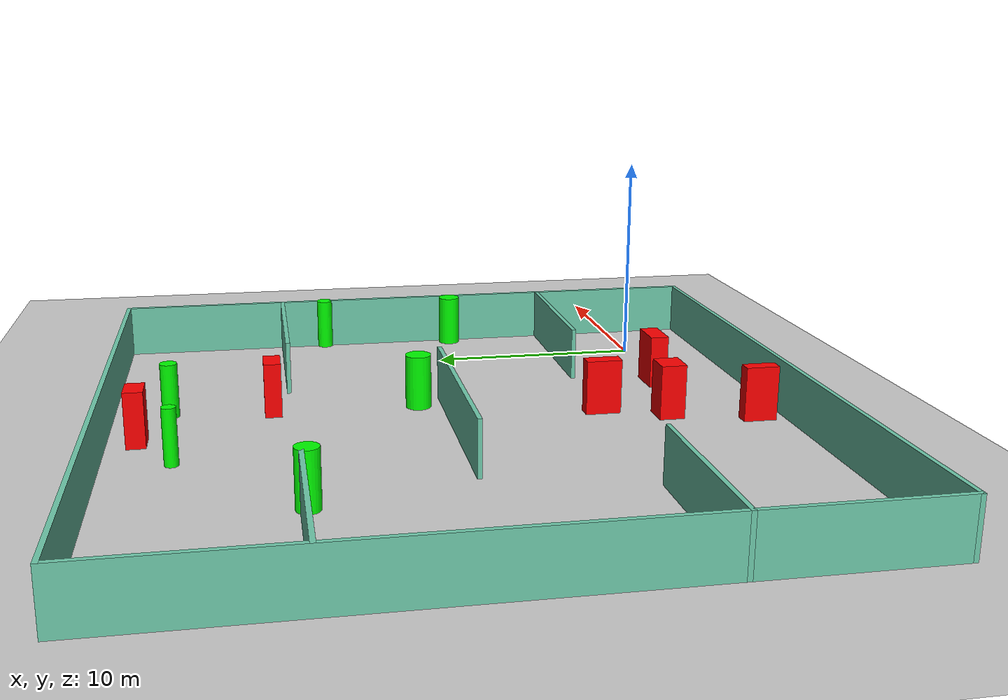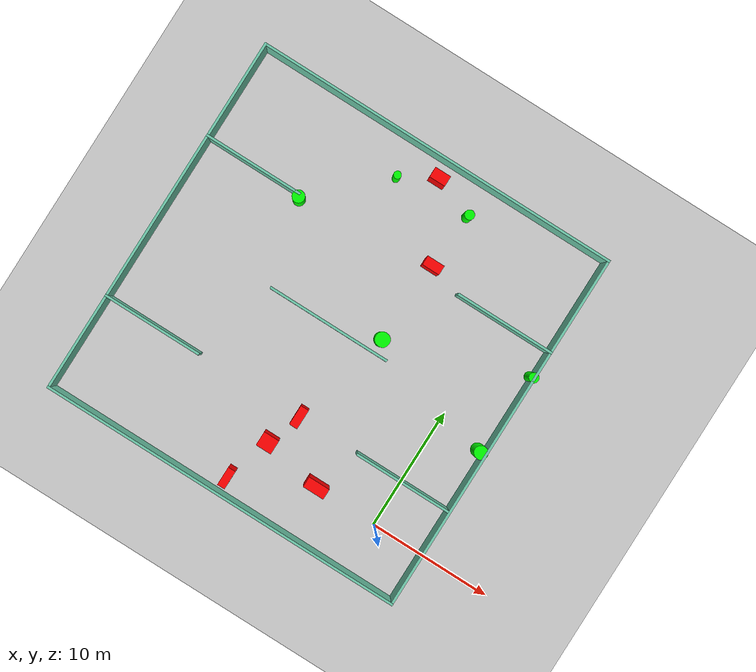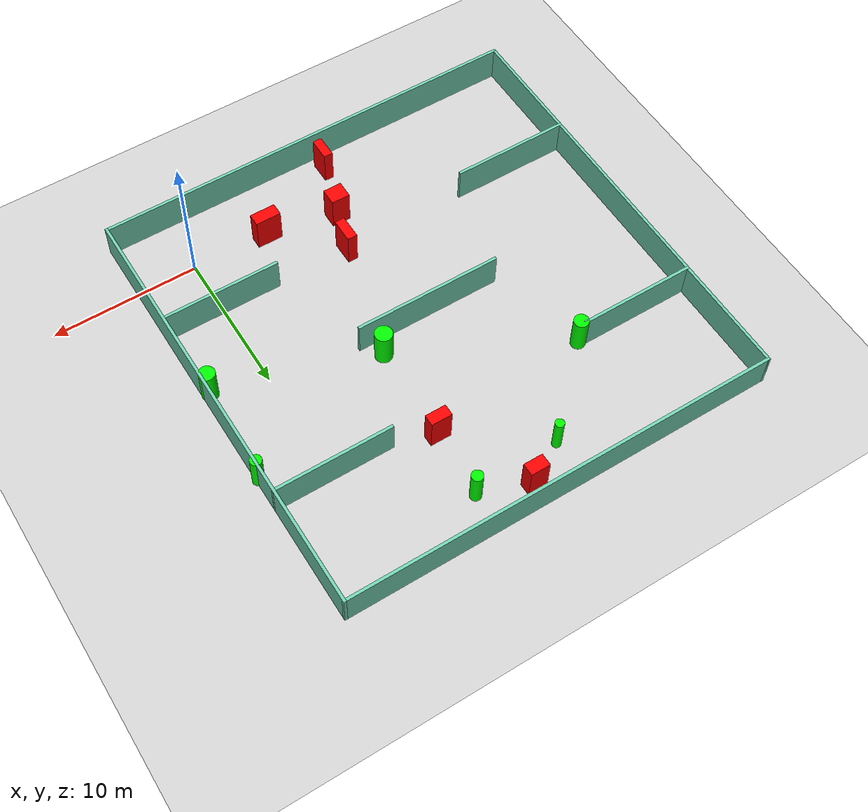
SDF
<sdf version="1.7">
 <world name="default">
  <light name="sun" type="directional">
   <pose>0 0 10 0 -0 0</pose>
   <diffuse>0.8 0.8 0.8 1</diffuse>
   <specular>0.2 0.2 0.2 1</specular>
   <attenuation>
    <range>1000</range>
    <constant>0.9</constant>
    <linear>0.01</linear>
    <quadratic>0.001</quadratic>
   </attenuation>
   <direction>-0.5 0.1 -0.9</direction>
   <spot><inner_angle>0</inner_angle><outer_angle>0</outer_angle><falloff>0</falloff></spot>
  </light>
  <model name="ground_plane">
   <static>1</static>
   <link name="link">
    <collision name="collision">
     <geometry><plane><normal>0 0 1</normal><size>100 100</size></plane></geometry>
     <surface>
      <contact><collide_bitmask>65535</collide_bitmask></contact>
      <friction><ode><mu>100</mu><mu2>50</mu2></ode></friction>
     </surface>
    </collision>
    <visual name="visual">
     <cast_shadows>0</cast_shadows>
     <geometry><plane><normal>0 0 1</normal><size>100 100</size></plane></geometry>
     <material>
      <script><uri>file://media/materials/scripts/gazebo.material</uri><name>Gazebo/Grey</name></script>
     </material>
    </visual>
   </link>
  </model>
  <gravity>0 0 -9.8</gravity>
  <magnetic_field>6e-06 2.3e-05 -4.2e-05</magnetic_field>
  <atmosphere type="adiabatic"/>
  <physics type="ode">
   <max_step_size>0.001</max_step_size>
   <real_time_factor>1</real_time_factor>
   <real_time_update_rate>1000</real_time_update_rate>
  </physics>
  <scene><ambient>0.4 0.4 0.4 1</ambient><background>0.7 0.7 0.7 1</background><shadows>1</shadows></scene>
  <spherical_coordinates>
   <surface_model>EARTH_WGS84</surface_model>
   <latitude_deg>0</latitude_deg>
   <longitude_deg>0</longitude_deg>
   <elevation>0</elevation>
   <heading_deg>0</heading_deg>
  </spherical_coordinates>
  <model name="my_base_walls">
   <link name="Wall_10">
    <collision name="Wall_10_Collision">
     <geometry><box><size>8.2 0.2 2.5</size></box></geometry>
     <pose>0 0 1.25 0 -0 0</pose>
    </collision>
    <visual name="Wall_10_Visual">
     <pose>0 0 1.25 0 -0 0</pose>
     <geometry><box><size>8.2 0.2 2.5</size></box></geometry>
     <material>
      <script><uri>file://media/materials/scripts/gazebo.material</uri><name>Gazebo/Grey</name></script>
      <ambient>0.435294 0.796078 0.67451 1</ambient>
     </material>
     <meta><layer>0</layer></meta>
    </visual>
    <pose>-11 -7 0 0 -0 0</pose>
   </link>
   <link name="Wall_12">
    <collision name="Wall_12_Collision">
     <geometry><box><size>8.2 0.2 2.5</size></box></geometry>
     <pose>0 0 1.25 0 -0 0</pose>
    </collision>
    <visual name="Wall_12_Visual">
     <pose>0 0 1.25 0 -0 0</pose>
     <geometry><box><size>8.2 0.2 2.5</size></box></geometry>
     <material>
      <script><uri>file://media/materials/scripts/gazebo.material</uri><name>Gazebo/Grey</name></script>
      <ambient>0.435294 0.796078 0.67451 1</ambient>
     </material>
     <meta><layer>0</layer></meta>
    </visual>
    <pose>-11 7 0 0 -0 0</pose>
   </link>
   <link name="Wall_14">
    <collision name="Wall_14_Collision">
     <geometry><box><size>8.2 0.2 2.5</size></box></geometry>
     <pose>0 0 1.25 0 -0 0</pose>
    </collision>
    <visual name="Wall_14_Visual">
     <pose>0 0 1.25 0 -0 0</pose>
     <geometry><box><size>8.2 0.2 2.5</size></box></geometry>
     <material>
      <script><uri>file://media/materials/scripts/gazebo.material</uri><name>Gazebo/Grey</name></script>
      <ambient>0.435294 0.796078 0.67451 1</ambient>
     </material>
     <meta><layer>0</layer></meta>
    </visual>
    <pose>11 7 0 0 -0 3.14159</pose>
   </link>
   <link name="Wall_16">
    <collision name="Wall_16_Collision">
     <geometry><box><size>10.2 0.2 2.5</size></box></geometry>
     <pose>0 0 1.25 0 -0 0</pose>
    </collision>
    <visual name="Wall_16_Visual">
     <pose>0 0 1.25 0 -0 0</pose>
     <geometry><box><size>10.2 0.2 2.5</size></box></geometry>
     <material>
      <script><uri>file://media/materials/scripts/gazebo.material</uri><name>Gazebo/Grey</name></script>
      <ambient>0.435294 0.796078 0.67451 1</ambient>
     </material>
     <meta><layer>0</layer></meta>
    </visual>
    <pose>0 0 0 0 -0 3.14159</pose>
   </link>
   <link name="Wall_2">
    <collision name="Wall_2_Collision">
     <geometry><box><size>30.2 0.2 2.5</size></box></geometry>
     <pose>0 0 1.25 0 -0 0</pose>
    </collision>
    <visual name="Wall_2_Visual">
     <pose>0 0 1.25 0 -0 0</pose>
     <geometry><box><size>30.2 0.2 2.5</size></box></geometry>
     <material>
      <script><uri>file://media/materials/scripts/gazebo.material</uri><name>Gazebo/Grey</name></script>
      <ambient>0.435294 0.796078 0.67451 1</ambient>
     </material>
     <meta><layer>0</layer></meta>
    </visual>
    <pose>0 -15 0 0 -0 3.14159</pose>
   </link>
   <link name="Wall_3">
    <collision name="Wall_3_Collision">
     <geometry><box><size>30.2 0.2 2.5</size></box></geometry>
     <pose>0 0 1.25 0 -0 0</pose>
    </collision>
    <visual name="Wall_3_Visual">
     <pose>0 0 1.25 0 -0 0</pose>
     <geometry><box><size>30.2 0.2 2.5</size></box></geometry>
     <material>
      <script><uri>file://media/materials/scripts/gazebo.material</uri><name>Gazebo/Grey</name></script>
      <ambient>0.435294 0.796078 0.67451 1</ambient>
     </material>
     <meta><layer>0</layer></meta>
    </visual>
    <pose>-15 0 0 0 -0 1.5708</pose>
   </link>
   <link name="Wall_4">
    <collision name="Wall_4_Collision">
     <geometry><box><size>30.2 0.2 2.5</size></box></geometry>
     <pose>0 0 1.25 0 -0 0</pose>
    </collision>
    <visual name="Wall_4_Visual">
     <pose>0 0 1.25 0 -0 0</pose>
     <geometry><box><size>30.2 0.2 2.5</size></box></geometry>
     <material>
      <script><uri>file://media/materials/scripts/gazebo.material</uri><name>Gazebo/Grey</name></script>
      <ambient>0.435294 0.796078 0.67451 1</ambient>
     </material>
     <meta><layer>0</layer></meta>
    </visual>
    <pose>0 15 0 0 -0 0</pose>
   </link>
   <link name="Wall_6">
    <collision name="Wall_6_Collision">
     <geometry><box><size>30.2 0.2 2.5</size></box></geometry>
     <pose>0 0 1.25 0 -0 0</pose>
    </collision>
    <visual name="Wall_6_Visual">
     <pose>0 0 1.25 0 -0 0</pose>
     <geometry><box><size>30.2 0.2 2.5</size></box></geometry>
     <material>
      <script><uri>file://media/materials/scripts/gazebo.material</uri><name>Gazebo/Grey</name></script>
      <ambient>0.435294 0.796078 0.67451 1</ambient>
     </material>
     <meta><layer>0</layer></meta>
    </visual>
    <pose>15 0 0 0 -0 1.5708</pose>
   </link>
   <link name="Wall_8">
    <collision name="Wall_8_Collision">
     <geometry><box><size>8.2 0.2 2.5</size></box></geometry>
     <pose>0 0 1.25 0 -0 0</pose>
    </collision>
    <visual name="Wall_8_Visual">
     <pose>0 0 1.25 0 -0 0</pose>
     <geometry><box><size>8.2 0.2 2.5</size></box></geometry>
     <material>
      <script><uri>file://media/materials/scripts/gazebo.material</uri><name>Gazebo/Grey</name></script>
      <ambient>0.435294 0.796078 0.67451 1</ambient>
     </material>
     <meta><layer>0</layer></meta>
    </visual>
    <pose>11 -7 0 0 -0 3.14159</pose>
   </link>
   <static>1</static>
   <pose>-11 11 0 0 -0 0</pose>
  </model>
  <model name="cylinder1">
   <static>1</static>
   <link name="link">
    <inertial>
     <mass>1</mass>
     <inertia><ixx>0.5</ixx><ixy>0</ixy><ixz>0</ixz><iyy>0.5</iyy><iyz>0</iyz><izz>1</izz></inertia>
    </inertial>
    <collision name="collision">
     <geometry><cylinder><radius>0.5404655762927587</radius><length>2.5</length></cylinder></geometry>
    </collision>
    <visual name="visual">
     <geometry><cylinder><radius>0.5404655762927587</radius><length>2.5</length></cylinder></geometry>
     <material>
      <ambient>0 1 0 1</ambient>
      <diffuse>0 1 0 1</diffuse>
      <specular>0.1 0.1 0.1 1</specular>
      <emissive>0 0 0 0</emissive>
     </material>
    </visual>
   </link>
   <pose>3.5894563913446227 8.99243911422339 1.25 0 0 0</pose>
  </model>
  <model name="cylinder2">
   <static>1</static>
   <link name="link">
    <inertial>
     <mass>1</mass>
     <inertia><ixx>0.5</ixx><ixy>0</ixy><ixz>0</ixz><iyy>0.5</iyy><iyz>0</iyz><izz>1</izz></inertia>
    </inertial>
    <collision name="collision">
     <geometry><cylinder><radius>0.5911805775722776</radius><length>2.5</length></cylinder></geometry>
    </collision>
    <visual name="visual">
     <geometry><cylinder><radius>0.5911805775722776</radius><length>2.5</length></cylinder></geometry>
     <material>
      <ambient>0 1 0 1</ambient>
      <diffuse>0 1 0 1</diffuse>
      <specular>0.1 0.1 0.1 1</specular>
      <emissive>0 0 0 0</emissive>
     </material>
    </visual>
   </link>
   <pose>-7.019613956242026 12.161435755735145 1.25 0 0 0</pose>
  </model>
  <model name="cylinder3">
   <static>1</static>
   <link name="link">
    <inertial>
     <mass>1</mass>
     <inertia><ixx>0.5</ixx><ixy>0</ixy><ixz>0</ixz><iyy>0.5</iyy><iyz>0</iyz><izz>1</izz></inertia>
    </inertial>
    <collision name="collision">
     <geometry><cylinder><radius>0.38981857792092095</radius><length>2.5</length></cylinder></geometry>
    </collision>
    <visual name="visual">
     <geometry><cylinder><radius>0.38981857792092095</radius><length>2.5</length></cylinder></geometry>
     <material>
      <ambient>0 1 0 1</ambient>
      <diffuse>0 1 0 1</diffuse>
      <specular>0.1 0.1 0.1 1</specular>
      <emissive>0 0 0 0</emissive>
     </material>
    </visual>
   </link>
   <pose>-6.5103808901940035 23.386316993723426 1.25 0 0 0</pose>
  </model>
  <model name="cylinder4">
   <static>1</static>
   <link name="link">
    <inertial>
     <mass>1</mass>
     <inertia><ixx>0.5</ixx><ixy>0</ixy><ixz>0</ixz><iyy>0.5</iyy><iyz>0</iyz><izz>1</izz></inertia>
    </inertial>
    <collision name="collision">
     <geometry><cylinder><radius>0.5011560267356824</radius><length>2.5</length></cylinder></geometry>
    </collision>
    <visual name="visual">
     <geometry><cylinder><radius>0.5011560267356824</radius><length>2.5</length></cylinder></geometry>
     <material>
      <ambient>0 1 0 1</ambient>
      <diffuse>0 1 0 1</diffuse>
      <specular>0.1 0.1 0.1 1</specular>
      <emissive>0 0 0 0</emissive>
     </material>
    </visual>
   </link>
   <pose>-17.927088566853605 17.78148527836693 1.25 0 0 0</pose>
  </model>
  <model name="cylinder5">
   <static>1</static>
   <link name="link">
    <inertial>
     <mass>1</mass>
     <inertia><ixx>0.5</ixx><ixy>0</ixy><ixz>0</ixz><iyy>0.5</iyy><iyz>0</iyz><izz>1</izz></inertia>
    </inertial>
    <collision name="collision">
     <geometry><cylinder><radius>0.30439094359797314</radius><length>2.5</length></cylinder></geometry>
    </collision>
    <visual name="visual">
     <geometry><cylinder><radius>0.30439094359797314</radius><length>2.5</length></cylinder></geometry>
     <material>
      <ambient>0 1 0 1</ambient>
      <diffuse>0 1 0 1</diffuse>
      <specular>0.1 0.1 0.1 1</specular>
      <emissive>0 0 0 0</emissive>
     </material>
    </visual>
   </link>
   <pose>-12.595023418220668 23.028414900776028 1.25 0 0 0</pose>
  </model>
  <model name="cylinder6">
   <static>1</static>
   <link name="link">
    <inertial>
     <mass>1</mass>
     <inertia><ixx>0.5</ixx><ixy>0</ixy><ixz>0</ixz><iyy>0.5</iyy><iyz>0</iyz><izz>1</izz></inertia>
    </inertial>
    <collision name="collision">
     <geometry><cylinder><radius>0.3921230040627941</radius><length>2.5</length></cylinder></geometry>
    </collision>
    <visual name="visual">
     <geometry><cylinder><radius>0.3921230040627941</radius><length>2.5</length></cylinder></geometry>
     <material>
      <ambient>0 1 0 1</ambient>
      <diffuse>0 1 0 1</diffuse>
      <specular>0.1 0.1 0.1 1</specular>
      <emissive>0 0 0 0</emissive>
     </material>
    </visual>
   </link>
   <pose>3.932060870767547 15.754354834603397 1.25 0 0 0</pose>
  </model>
  <model name="box1">
   <static>1</static>
   <link name="link">
    <inertial>
     <mass>1</mass>
     <inertia><ixx>0.083</ixx><ixy>0</ixy><ixz>0</ixz><iyy>0.083</iyy><iyz>0</iyz><izz>0.083</izz></inertia>
    </inertial>
    <collision name="collision">
     <geometry><box><size>1.2846765312540482 1.1594113577145948 2.5</size></box></geometry>
    </collision>
    <visual name="visual">
     <geometry><box><size>1.2846765312540482 1.1594113577145948 2.5</size></box></geometry>
     <material>
      <ambient>1 0 0 1</ambient>
      <diffuse>1 0 0 1</diffuse>
      <specular>0.1 0.1 0.1 1</specular>
      <emissive>0 0 0 0</emissive>
     </material>
    </visual>
    <sensor name="my_contact" type="contact">
     <contact><collision>box_collision</collision><topic>__default_topic__</topic></contact>
    </sensor>
   </link>
   <pose>-10.115159198595705 1.1729032635543453 1.25 0 0 0</pose>
  </model>
  <model name="box2">
   <static>1</static>
   <link name="link">
    <inertial>
     <mass>1</mass>
     <inertia><ixx>0.083</ixx><ixy>0</ixy><ixz>0</ixz><iyy>0.083</iyy><iyz>0</iyz><izz>0.083</izz></inertia>
    </inertial>
    <collision name="collision">
     <geometry><box><size>1.333763213599005 0.8487487237427154 2.5</size></box></geometry>
    </collision>
    <visual name="visual">
     <geometry><box><size>1.333763213599005 0.8487487237427154 2.5</size></box></geometry>
     <material>
      <ambient>1 0 0 1</ambient>
      <diffuse>1 0 0 1</diffuse>
      <specular>0.1 0.1 0.1 1</specular>
      <emissive>0 0 0 0</emissive>
     </material>
    </visual>
    <sensor name="my_contact" type="contact">
     <contact><collision>box_collision</collision><topic>__default_topic__</topic></contact>
    </sensor>
   </link>
   <pose>-9.858919565048465 24.607815012667746 1.25 0 0 0</pose>
  </model>
  <model name="box3">
   <static>1</static>
   <link name="link">
    <inertial>
     <mass>1</mass>
     <inertia><ixx>0.083</ixx><ixy>0</ixy><ixz>0</ixz><iyy>0.083</iyy><iyz>0</iyz><izz>0.083</izz></inertia>
    </inertial>
    <collision name="collision">
     <geometry><box><size>1.7553104860280269 0.8606848818325392 2.5</size></box></geometry>
    </collision>
    <visual name="visual">
     <geometry><box><size>1.7553104860280269 0.8606848818325392 2.5</size></box></geometry>
     <material>
      <ambient>1 0 0 1</ambient>
      <diffuse>1 0 0 1</diffuse>
      <specular>0.1 0.1 0.1 1</specular>
      <emissive>0 0 0 0</emissive>
     </material>
    </visual>
    <sensor name="my_contact" type="contact">
     <contact><collision>box_collision</collision><topic>__default_topic__</topic></contact>
    </sensor>
   </link>
   <pose>-5.290916362287989 0.27678716267278336 1.25 0 0 0</pose>
  </model>
  <model name="box4">
   <static>1</static>
   <link name="link">
    <inertial>
     <mass>1</mass>
     <inertia><ixx>0.083</ixx><ixy>0</ixy><ixz>0</ixz><iyy>0.083</iyy><iyz>0</iyz><izz>0.083</izz></inertia>
    </inertial>
    <collision name="collision">
     <geometry><box><size>0.6276234444774291 1.5261319898884331 2.5</size></box></geometry>
    </collision>
    <visual name="visual">
     <geometry><box><size>0.6276234444774291 1.5261319898884331 2.5</size></box></geometry>
     <material>
      <ambient>1 0 0 1</ambient>
      <diffuse>1 0 0 1</diffuse>
      <specular>0.1 0.1 0.1 1</specular>
      <emissive>0 0 0 0</emissive>
     </material>
    </visual>
    <sensor name="my_contact" type="contact">
     <contact><collision>box_collision</collision><topic>__default_topic__</topic></contact>
    </sensor>
   </link>
   <pose>-11.292011542393105 -2.6428318700934716 1.25 0 0 0</pose>
  </model>
  <model name="box5">
   <static>1</static>
   <link name="link">
    <inertial>
     <mass>1</mass>
     <inertia><ixx>0.083</ixx><ixy>0</ixy><ixz>0</ixz><iyy>0.083</iyy><iyz>0</iyz><izz>0.083</izz></inertia>
    </inertial>
    <collision name="collision">
     <geometry><box><size>0.6793853290313658 1.6242861226755325 2.5</size></box></geometry>
    </collision>
    <visual name="visual">
     <geometry><box><size>0.6793853290313658 1.6242861226755325 2.5</size></box></geometry>
     <material>
      <ambient>1 0 0 1</ambient>
      <diffuse>1 0 0 1</diffuse>
      <specular>0.1 0.1 0.1 1</specular>
      <emissive>0 0 0 0</emissive>
     </material>
    </visual>
    <sensor name="my_contact" type="contact">
     <contact><collision>box_collision</collision><topic>__default_topic__</topic></contact>
    </sensor>
   </link>
   <pose>-9.163039092065734 4.013967778654454 1.25 0 0 0</pose>
  </model>
  <model name="box6">
   <static>1</static>
   <link name="link">
    <inertial>
     <mass>1</mass>
     <inertia><ixx>0.083</ixx><ixy>0</ixy><ixz>0</ixz><iyy>0.083</iyy><iyz>0</iyz><izz>0.083</izz></inertia>
    </inertial>
    <collision name="collision">
     <geometry><box><size>1.44045374930326 0.7711132903766413 2.5</size></box></geometry>
    </collision>
    <visual name="visual">
     <geometry><box><size>1.44045374930326 0.7711132903766413 2.5</size></box></geometry>
     <material>
      <ambient>1 0 0 1</ambient>
      <diffuse>1 0 0 1</diffuse>
      <specular>0.1 0.1 0.1 1</specular>
      <emissive>0 0 0 0</emissive>
     </material>
    </visual>
    <sensor name="my_contact" type="contact">
     <contact><collision>box_collision</collision><topic>__default_topic__</topic></contact>
    </sensor>
   </link>
   <pose>-6.778276920324682 18.809775025380247 1.25 0 0 0</pose>
  </model>
 </world>
</sdf>
